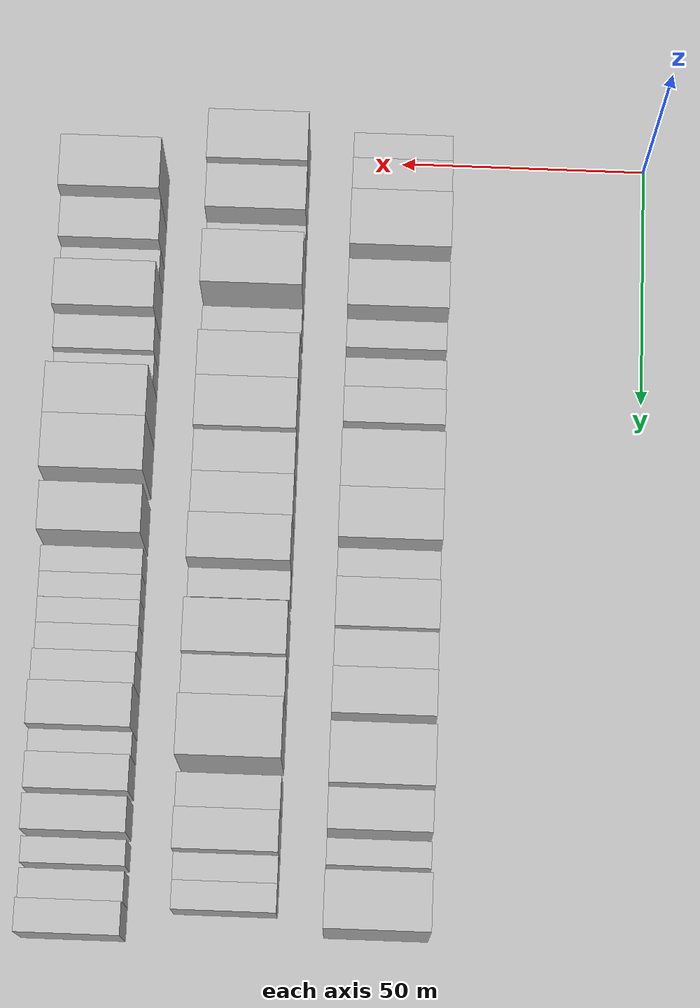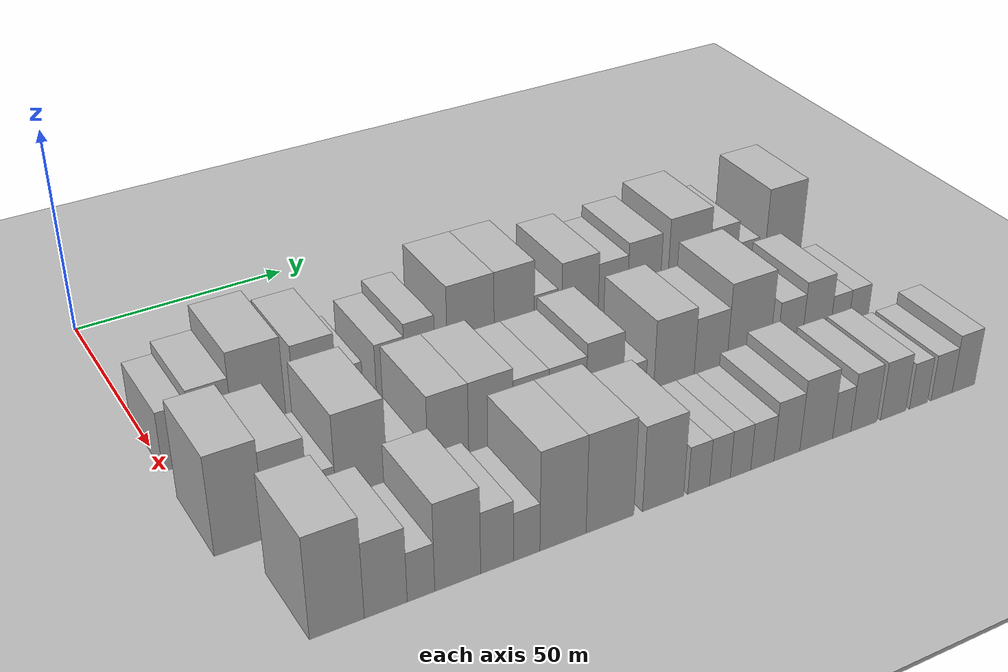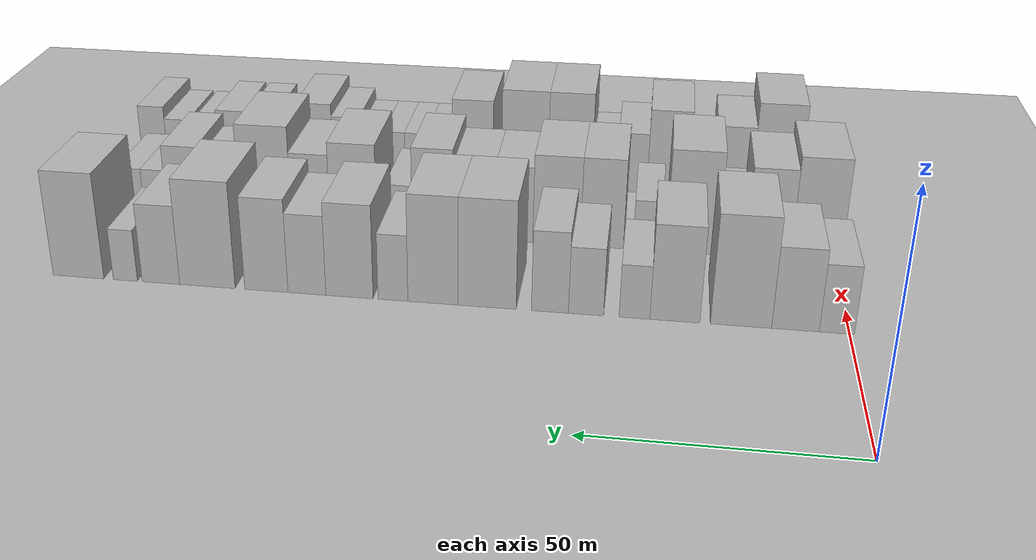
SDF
<sdf version="1.6">
 <world name="default">
  <include><name>ground_plane_1</name><uri>model://HANNAS_ground_plane</uri></include>
  <include>
   <name>ground_plane_2</name>
   <uri>model://HANNAS_ground_plane</uri>
   <pose>100 0 0  0 0 0</pose>
  </include>
  <model name="building_40">
   <static>1</static>
   <pose>50.0000 2.6433 0 0.000000 0.000000 0.000000</pose>
   <link name="link">
    <pose>0 0 7.50 0 0 0</pose>
    <collision name="collision"><geometry><box><size>20.0000 6.5380 15.0000</size></box></geometry></collision>
    <visual name="visual">
     <cast_shadows>0</cast_shadows>
     <geometry><box><size>20.0000 6.5380 15.0000</size></box></geometry>
     <material>
      <script>
       <uri>model://HANNAS_wall/materials/scripts</uri>
       <uri>model://HANNAS_wall/materials/textures</uri>
       <name>vrc/HANNAS_wall</name>
      </script>
     </material>
    </visual>
   </link>
  </model>
  <model name="building_41">
   <static>1</static>
   <pose>50.0000 10.3555 0 0.000000 0.000000 0.000000</pose>
   <link name="link">
    <pose>0 0 9.00 0 0 0</pose>
    <collision name="collision"><geometry><box><size>20.0000 8.8864 18.0000</size></box></geometry></collision>
    <visual name="visual">
     <cast_shadows>0</cast_shadows>
     <geometry><box><size>20.0000 8.8864 18.0000</size></box></geometry>
     <material>
      <script>
       <uri>model://HANNAS_wall/materials/scripts</uri>
       <uri>model://HANNAS_wall/materials/textures</uri>
       <name>vrc/HANNAS_wall</name>
      </script>
     </material>
    </visual>
   </link>
  </model>
  <model name="building_42">
   <static>1</static>
   <pose>50.0000 20.5644 0 0.000000 0.000000 0.000000</pose>
   <link name="link">
    <pose>0 0 12.00 0 0 0</pose>
    <collision name="collision"><geometry><box><size>20.0000 11.5315 24.0000</size></box></geometry></collision>
    <visual name="visual">
     <cast_shadows>0</cast_shadows>
     <geometry><box><size>20.0000 11.5315 24.0000</size></box></geometry>
     <material>
      <script>
       <uri>model://HANNAS_wall/materials/scripts</uri>
       <uri>model://HANNAS_wall/materials/textures</uri>
       <name>vrc/HANNAS_wall</name>
      </script>
     </material>
    </visual>
   </link>
  </model>
  <model name="building_43">
   <static>1</static>
   <pose>50.0000 33.1167 0 0.000000 0.000000 0.000000</pose>
   <link name="link">
    <pose>0 0 10.50 0 0 0</pose>
    <collision name="collision"><geometry><box><size>20.0000 9.5731 21.0000</size></box></geometry></collision>
    <visual name="visual">
     <cast_shadows>0</cast_shadows>
     <geometry><box><size>20.0000 9.5731 21.0000</size></box></geometry>
     <material>
      <script>
       <uri>model://HANNAS_wall/materials/scripts</uri>
       <uri>model://HANNAS_wall/materials/textures</uri>
       <name>vrc/HANNAS_wall</name>
      </script>
     </material>
    </visual>
   </link>
  </model>
  <model name="building_44">
   <static>1</static>
   <pose>50.0000 40.8518 0 0.000000 0.000000 0.000000</pose>
   <link name="link">
    <pose>0 0 6.00 0 0 0</pose>
    <collision name="collision"><geometry><box><size>20.0000 5.8971 12.0000</size></box></geometry></collision>
    <visual name="visual">
     <cast_shadows>0</cast_shadows>
     <geometry><box><size>20.0000 5.8971 12.0000</size></box></geometry>
     <material>
      <script>
       <uri>model://HANNAS_wall/materials/scripts</uri>
       <uri>model://HANNAS_wall/materials/textures</uri>
       <name>vrc/HANNAS_wall</name>
      </script>
     </material>
    </visual>
   </link>
  </model>
  <model name="building_45">
   <static>1</static>
   <pose>50.0000 50.2106 0 0.000000 0.000000 0.000000</pose>
   <link name="link">
    <pose>0 0 7.50 0 0 0</pose>
    <collision name="collision"><geometry><box><size>20.0000 6.8205 15.0000</size></box></geometry></collision>
    <visual name="visual">
     <cast_shadows>0</cast_shadows>
     <geometry><box><size>20.0000 6.8205 15.0000</size></box></geometry>
     <material>
      <script>
       <uri>model://HANNAS_wall/materials/scripts</uri>
       <uri>model://HANNAS_wall/materials/textures</uri>
       <name>vrc/HANNAS_wall</name>
      </script>
     </material>
    </visual>
   </link>
  </model>
  <model name="building_46">
   <static>1</static>
   <pose>50.0000 57.2424 0 0.000000 0.000000 0.000000</pose>
   <link name="link">
    <pose>0 0 9.00 0 0 0</pose>
    <collision name="collision"><geometry><box><size>20.0000 7.2431 18.0000</size></box></geometry></collision>
    <visual name="visual">
     <cast_shadows>0</cast_shadows>
     <geometry><box><size>20.0000 7.2431 18.0000</size></box></geometry>
     <material>
      <script>
       <uri>model://HANNAS_wall/materials/scripts</uri>
       <uri>model://HANNAS_wall/materials/textures</uri>
       <name>vrc/HANNAS_wall</name>
      </script>
     </material>
    </visual>
   </link>
  </model>
  <model name="building_47">
   <static>1</static>
   <pose>50.0000 69.6087 0 0.000000 0.000000 0.000000</pose>
   <link name="link">
    <pose>0 0 12.00 0 0 0</pose>
    <collision name="collision"><geometry><box><size>20.0000 11.4896 24.0000</size></box></geometry></collision>
    <visual name="visual">
     <cast_shadows>0</cast_shadows>
     <geometry><box><size>20.0000 11.4896 24.0000</size></box></geometry>
     <material>
      <script>
       <uri>model://HANNAS_wall/materials/scripts</uri>
       <uri>model://HANNAS_wall/materials/textures</uri>
       <name>vrc/HANNAS_wall</name>
      </script>
     </material>
    </visual>
   </link>
  </model>
  <model name="building_48">
   <static>1</static>
   <pose>50.0000 80.3825 0 0.000000 0.000000 0.000000</pose>
   <link name="link">
    <pose>0 0 12.00 0 0 0</pose>
    <collision name="collision"><geometry><box><size>20.0000 10.0580 24.0000</size></box></geometry></collision>
    <visual name="visual">
     <cast_shadows>0</cast_shadows>
     <geometry><box><size>20.0000 10.0580 24.0000</size></box></geometry>
     <material>
      <script>
       <uri>model://HANNAS_wall/materials/scripts</uri>
       <uri>model://HANNAS_wall/materials/textures</uri>
       <name>vrc/HANNAS_wall</name>
      </script>
     </material>
    </visual>
   </link>
  </model>
  <model name="building_49">
   <static>1</static>
   <pose>50.0000 88.4123 0 0.000000 0.000000 0.000000</pose>
   <link name="link">
    <pose>0 0 7.50 0 0 0</pose>
    <collision name="collision"><geometry><box><size>20.0000 6.0016 15.0000</size></box></geometry></collision>
    <visual name="visual">
     <cast_shadows>0</cast_shadows>
     <geometry><box><size>20.0000 6.0016 15.0000</size></box></geometry>
     <material>
      <script>
       <uri>model://HANNAS_wall/materials/scripts</uri>
       <uri>model://HANNAS_wall/materials/textures</uri>
       <name>vrc/HANNAS_wall</name>
      </script>
     </material>
    </visual>
   </link>
  </model>
  <model name="building_50">
   <static>1</static>
   <pose>50.0000 97.2108 0 0.000000 0.000000 0.000000</pose>
   <link name="link">
    <pose>0 0 10.50 0 0 0</pose>
    <collision name="collision"><geometry><box><size>20.0000 9.5954 21.0000</size></box></geometry></collision>
    <visual name="visual">
     <cast_shadows>0</cast_shadows>
     <geometry><box><size>20.0000 9.5954 21.0000</size></box></geometry>
     <material>
      <script>
       <uri>model://HANNAS_wall/materials/scripts</uri>
       <uri>model://HANNAS_wall/materials/textures</uri>
       <name>vrc/HANNAS_wall</name>
      </script>
     </material>
    </visual>
   </link>
  </model>
  <model name="building_51">
   <static>1</static>
   <pose>50.0000 105.8910 0 0.000000 0.000000 0.000000</pose>
   <link name="link">
    <pose>0 0 9.00 0 0 0</pose>
    <collision name="collision"><geometry><box><size>20.0000 7.7649 18.0000</size></box></geometry></collision>
    <visual name="visual">
     <cast_shadows>0</cast_shadows>
     <geometry><box><size>20.0000 7.7649 18.0000</size></box></geometry>
     <material>
      <script>
       <uri>model://HANNAS_wall/materials/scripts</uri>
       <uri>model://HANNAS_wall/materials/textures</uri>
       <name>vrc/HANNAS_wall</name>
      </script>
     </material>
    </visual>
   </link>
  </model>
  <model name="building_52">
   <static>1</static>
   <pose>50.0000 114.2471 0 0.000000 0.000000 0.000000</pose>
   <link name="link">
    <pose>0 0 10.50 0 0 0</pose>
    <collision name="collision"><geometry><box><size>20.0000 8.9474 21.0000</size></box></geometry></collision>
    <visual name="visual">
     <cast_shadows>0</cast_shadows>
     <geometry><box><size>20.0000 8.9474 21.0000</size></box></geometry>
     <material>
      <script>
       <uri>model://HANNAS_wall/materials/scripts</uri>
       <uri>model://HANNAS_wall/materials/textures</uri>
       <name>vrc/HANNAS_wall</name>
      </script>
     </material>
    </visual>
   </link>
  </model>
  <model name="building_53">
   <static>1</static>
   <pose>50.0000 126.5164 0 0.000000 0.000000 0.000000</pose>
   <link name="link">
    <pose>0 0 12.00 0 0 0</pose>
    <collision name="collision"><geometry><box><size>20.0000 11.5913 24.0000</size></box></geometry></collision>
    <visual name="visual">
     <cast_shadows>0</cast_shadows>
     <geometry><box><size>20.0000 11.5913 24.0000</size></box></geometry>
     <material>
      <script>
       <uri>model://HANNAS_wall/materials/scripts</uri>
       <uri>model://HANNAS_wall/materials/textures</uri>
       <name>vrc/HANNAS_wall</name>
      </script>
     </material>
    </visual>
   </link>
  </model>
  <model name="building_54">
   <static>1</static>
   <pose>50.0000 136.2720 0 0.000000 0.000000 0.000000</pose>
   <link name="link">
    <pose>0 0 9.00 0 0 0</pose>
    <collision name="collision"><geometry><box><size>20.0000 7.9199 18.0000</size></box></geometry></collision>
    <visual name="visual">
     <cast_shadows>0</cast_shadows>
     <geometry><box><size>20.0000 7.9199 18.0000</size></box></geometry>
     <material>
      <script>
       <uri>model://HANNAS_wall/materials/scripts</uri>
       <uri>model://HANNAS_wall/materials/textures</uri>
       <name>vrc/HANNAS_wall</name>
      </script>
     </material>
    </visual>
   </link>
  </model>
  <model name="building_55">
   <static>1</static>
   <pose>50.0000 143.8051 0 0.000000 0.000000 0.000000</pose>
   <link name="link">
    <pose>0 0 6.00 0 0 0</pose>
    <collision name="collision"><geometry><box><size>20.0000 5.1463 12.0000</size></box></geometry></collision>
    <visual name="visual">
     <cast_shadows>0</cast_shadows>
     <geometry><box><size>20.0000 5.1463 12.0000</size></box></geometry>
     <material>
      <script>
       <uri>model://HANNAS_wall/materials/scripts</uri>
       <uri>model://HANNAS_wall/materials/textures</uri>
       <name>vrc/HANNAS_wall</name>
      </script>
     </material>
    </visual>
   </link>
  </model>
  <model name="building_56">
   <static>1</static>
   <pose>50.0000 153.8165 0 0.000000 0.000000 0.000000</pose>
   <link name="link">
    <pose>0 0 12.00 0 0 0</pose>
    <collision name="collision"><geometry><box><size>20.0000 10.8766 24.0000</size></box></geometry></collision>
    <visual name="visual">
     <cast_shadows>0</cast_shadows>
     <geometry><box><size>20.0000 10.8766 24.0000</size></box></geometry>
     <material>
      <script>
       <uri>model://HANNAS_wall/materials/scripts</uri>
       <uri>model://HANNAS_wall/materials/textures</uri>
       <name>vrc/HANNAS_wall</name>
      </script>
     </material>
    </visual>
   </link>
  </model>
  <model name="building_113">
   <static>1</static>
   <pose>79.0000 4.1818 0 0.000000 0.000000 0.000000</pose>
   <link name="link">
    <pose>0 0 12.00 0 0 0</pose>
    <collision name="collision"><geometry><box><size>20.0000 10.3268 24.0000</size></box></geometry></collision>
    <visual name="visual">
     <cast_shadows>0</cast_shadows>
     <geometry><box><size>20.0000 10.3268 24.0000</size></box></geometry>
     <material>
      <script>
       <uri>model://HANNAS_wall/materials/scripts</uri>
       <uri>model://HANNAS_wall/materials/textures</uri>
       <name>vrc/HANNAS_wall</name>
      </script>
     </material>
    </visual>
   </link>
  </model>
  <model name="building_114">
   <static>1</static>
   <pose>79.0000 13.9380 0 0.000000 0.000000 0.000000</pose>
   <link name="link">
    <pose>0 0 10.50 0 0 0</pose>
    <collision name="collision"><geometry><box><size>20.0000 9.1856 21.0000</size></box></geometry></collision>
    <visual name="visual">
     <cast_shadows>0</cast_shadows>
     <geometry><box><size>20.0000 9.1856 21.0000</size></box></geometry>
     <material>
      <script>
       <uri>model://HANNAS_wall/materials/scripts</uri>
       <uri>model://HANNAS_wall/materials/textures</uri>
       <name>vrc/HANNAS_wall</name>
      </script>
     </material>
    </visual>
   </link>
  </model>
  <model name="building_115">
   <static>1</static>
   <pose>79.0000 21.4108 0 0.000000 0.000000 0.000000</pose>
   <link name="link">
    <pose>0 0 6.00 0 0 0</pose>
    <collision name="collision"><geometry><box><size>20.0000 5.7599 12.0000</size></box></geometry></collision>
    <visual name="visual">
     <cast_shadows>0</cast_shadows>
     <geometry><box><size>20.0000 5.7599 12.0000</size></box></geometry>
     <material>
      <script>
       <uri>model://HANNAS_wall/materials/scripts</uri>
       <uri>model://HANNAS_wall/materials/textures</uri>
       <name>vrc/HANNAS_wall</name>
      </script>
     </material>
    </visual>
   </link>
  </model>
  <model name="building_116">
   <static>1</static>
   <pose>79.0000 29.7503 0 0.000000 0.000000 0.000000</pose>
   <link name="link">
    <pose>0 0 12.00 0 0 0</pose>
    <collision name="collision"><geometry><box><size>20.0000 10.9190 24.0000</size></box></geometry></collision>
    <visual name="visual">
     <cast_shadows>0</cast_shadows>
     <geometry><box><size>20.0000 10.9190 24.0000</size></box></geometry>
     <material>
      <script>
       <uri>model://HANNAS_wall/materials/scripts</uri>
       <uri>model://HANNAS_wall/materials/textures</uri>
       <name>vrc/HANNAS_wall</name>
      </script>
     </material>
    </visual>
   </link>
  </model>
  <model name="building_117">
   <static>1</static>
   <pose>79.0000 39.1713 0 0.000000 0.000000 0.000000</pose>
   <link name="link">
    <pose>0 0 6.00 0 0 0</pose>
    <collision name="collision"><geometry><box><size>20.0000 5.9230 12.0000</size></box></geometry></collision>
    <visual name="visual">
     <cast_shadows>0</cast_shadows>
     <geometry><box><size>20.0000 5.9230 12.0000</size></box></geometry>
     <material>
      <script>
       <uri>model://HANNAS_wall/materials/scripts</uri>
       <uri>model://HANNAS_wall/materials/textures</uri>
       <name>vrc/HANNAS_wall</name>
      </script>
     </material>
    </visual>
   </link>
  </model>
  <model name="building_118">
   <static>1</static>
   <pose>79.0000 48.6956 0 0.000000 0.000000 0.000000</pose>
   <link name="link">
    <pose>0 0 10.50 0 0 0</pose>
    <collision name="collision"><geometry><box><size>20.0000 9.1257 21.0000</size></box></geometry></collision>
    <visual name="visual">
     <cast_shadows>0</cast_shadows>
     <geometry><box><size>20.0000 9.1257 21.0000</size></box></geometry>
     <material>
      <script>
       <uri>model://HANNAS_wall/materials/scripts</uri>
       <uri>model://HANNAS_wall/materials/textures</uri>
       <name>vrc/HANNAS_wall</name>
      </script>
     </material>
    </visual>
   </link>
  </model>
  <model name="building_119">
   <static>1</static>
   <pose>79.0000 58.3672 0 0.000000 0.000000 0.000000</pose>
   <link name="link">
    <pose>0 0 10.50 0 0 0</pose>
    <collision name="collision"><geometry><box><size>20.0000 10.2175 21.0000</size></box></geometry></collision>
    <visual name="visual">
     <cast_shadows>0</cast_shadows>
     <geometry><box><size>20.0000 10.2175 21.0000</size></box></geometry>
     <material>
      <script>
       <uri>model://HANNAS_wall/materials/scripts</uri>
       <uri>model://HANNAS_wall/materials/textures</uri>
       <name>vrc/HANNAS_wall</name>
      </script>
     </material>
    </visual>
   </link>
  </model>
  <model name="building_120">
   <static>1</static>
   <pose>79.0000 67.6399 0 0.000000 0.000000 0.000000</pose>
   <link name="link">
    <pose>0 0 9.00 0 0 0</pose>
    <collision name="collision"><geometry><box><size>20.0000 8.3278 18.0000</size></box></geometry></collision>
    <visual name="visual">
     <cast_shadows>0</cast_shadows>
     <geometry><box><size>20.0000 8.3278 18.0000</size></box></geometry>
     <material>
      <script>
       <uri>model://HANNAS_wall/materials/scripts</uri>
       <uri>model://HANNAS_wall/materials/textures</uri>
       <name>vrc/HANNAS_wall</name>
      </script>
     </material>
    </visual>
   </link>
  </model>
  <model name="building_121">
   <static>1</static>
   <pose>79.0000 76.2771 0 0.000000 0.000000 0.000000</pose>
   <link name="link">
    <pose>0 0 9.00 0 0 0</pose>
    <collision name="collision"><geometry><box><size>20.0000 8.9467 18.0000</size></box></geometry></collision>
    <visual name="visual">
     <cast_shadows>0</cast_shadows>
     <geometry><box><size>20.0000 8.9467 18.0000</size></box></geometry>
     <material>
      <script>
       <uri>model://HANNAS_wall/materials/scripts</uri>
       <uri>model://HANNAS_wall/materials/textures</uri>
       <name>vrc/HANNAS_wall</name>
      </script>
     </material>
    </visual>
   </link>
  </model>
  <model name="building_122">
   <static>1</static>
   <pose>79.0000 85.2606 0 0.000000 0.000000 0.000000</pose>
   <link name="link">
    <pose>0 0 10.50 0 0 0</pose>
    <collision name="collision"><geometry><box><size>20.0000 9.0201 21.0000</size></box></geometry></collision>
    <visual name="visual">
     <cast_shadows>0</cast_shadows>
     <geometry><box><size>20.0000 9.0201 21.0000</size></box></geometry>
     <material>
      <script>
       <uri>model://HANNAS_wall/materials/scripts</uri>
       <uri>model://HANNAS_wall/materials/textures</uri>
       <name>vrc/HANNAS_wall</name>
      </script>
     </material>
    </visual>
   </link>
  </model>
  <model name="building_123">
   <static>1</static>
   <pose>79.0000 92.6813 0 0.000000 0.000000 0.000000</pose>
   <link name="link">
    <pose>0 0 6.00 0 0 0</pose>
    <collision name="collision"><geometry><box><size>20.0000 5.8213 12.0000</size></box></geometry></collision>
    <visual name="visual">
     <cast_shadows>0</cast_shadows>
     <geometry><box><size>20.0000 5.8213 12.0000</size></box></geometry>
     <material>
      <script>
       <uri>model://HANNAS_wall/materials/scripts</uri>
       <uri>model://HANNAS_wall/materials/textures</uri>
       <name>vrc/HANNAS_wall</name>
      </script>
     </material>
    </visual>
   </link>
  </model>
  <model name="building_124">
   <static>1</static>
   <pose>79.0000 102.7806 0 0.000000 0.000000 0.000000</pose>
   <link name="link">
    <pose>0 0 10.50 0 0 0</pose>
    <collision name="collision"><geometry><box><size>20.0000 10.3773 21.0000</size></box></geometry></collision>
    <visual name="visual">
     <cast_shadows>0</cast_shadows>
     <geometry><box><size>20.0000 10.3773 21.0000</size></box></geometry>
     <material>
      <script>
       <uri>model://HANNAS_wall/materials/scripts</uri>
       <uri>model://HANNAS_wall/materials/textures</uri>
       <name>vrc/HANNAS_wall</name>
      </script>
     </material>
    </visual>
   </link>
  </model>
  <model name="building_125">
   <static>1</static>
   <pose>79.0000 112.2680 0 0.000000 0.000000 0.000000</pose>
   <link name="link">
    <pose>0 0 9.00 0 0 0</pose>
    <collision name="collision"><geometry><box><size>20.0000 8.5975 18.0000</size></box></geometry></collision>
    <visual name="visual">
     <cast_shadows>0</cast_shadows>
     <geometry><box><size>20.0000 8.5975 18.0000</size></box></geometry>
     <material>
      <script>
       <uri>model://HANNAS_wall/materials/scripts</uri>
       <uri>model://HANNAS_wall/materials/textures</uri>
       <name>vrc/HANNAS_wall</name>
      </script>
     </material>
    </visual>
   </link>
  </model>
  <model name="building_126">
   <static>1</static>
   <pose>79.0000 122.3824 0 0.000000 0.000000 0.000000</pose>
   <link name="link">
    <pose>0 0 12.00 0 0 0</pose>
    <collision name="collision"><geometry><box><size>20.0000 11.6312 24.0000</size></box></geometry></collision>
    <visual name="visual">
     <cast_shadows>0</cast_shadows>
     <geometry><box><size>20.0000 11.6312 24.0000</size></box></geometry>
     <material>
      <script>
       <uri>model://HANNAS_wall/materials/scripts</uri>
       <uri>model://HANNAS_wall/materials/textures</uri>
       <name>vrc/HANNAS_wall</name>
      </script>
     </material>
    </visual>
   </link>
  </model>
  <model name="building_127">
   <static>1</static>
   <pose>79.0000 133.6462 0 0.000000 0.000000 0.000000</pose>
   <link name="link">
    <pose>0 0 7.50 0 0 0</pose>
    <collision name="collision"><geometry><box><size>20.0000 6.8965 15.0000</size></box></geometry></collision>
    <visual name="visual">
     <cast_shadows>0</cast_shadows>
     <geometry><box><size>20.0000 6.8965 15.0000</size></box></geometry>
     <material>
      <script>
       <uri>model://HANNAS_wall/materials/scripts</uri>
       <uri>model://HANNAS_wall/materials/textures</uri>
       <name>vrc/HANNAS_wall</name>
      </script>
     </material>
    </visual>
   </link>
  </model>
  <model name="building_128">
   <static>1</static>
   <pose>79.0000 141.0419 0 0.000000 0.000000 0.000000</pose>
   <link name="link">
    <pose>0 0 9.00 0 0 0</pose>
    <collision name="collision"><geometry><box><size>20.0000 7.8948 18.0000</size></box></geometry></collision>
    <visual name="visual">
     <cast_shadows>0</cast_shadows>
     <geometry><box><size>20.0000 7.8948 18.0000</size></box></geometry>
     <material>
      <script>
       <uri>model://HANNAS_wall/materials/scripts</uri>
       <uri>model://HANNAS_wall/materials/textures</uri>
       <name>vrc/HANNAS_wall</name>
      </script>
     </material>
    </visual>
   </link>
  </model>
  <model name="building_129">
   <static>1</static>
   <pose>79.0000 147.6118 0 0.000000 0.000000 0.000000</pose>
   <link name="link">
    <pose>0 0 6.00 0 0 0</pose>
    <collision name="collision"><geometry><box><size>20.0000 5.2451 12.0000</size></box></geometry></collision>
    <visual name="visual">
     <cast_shadows>0</cast_shadows>
     <geometry><box><size>20.0000 5.2451 12.0000</size></box></geometry>
     <material>
      <script>
       <uri>model://HANNAS_wall/materials/scripts</uri>
       <uri>model://HANNAS_wall/materials/textures</uri>
       <name>vrc/HANNAS_wall</name>
      </script>
     </material>
    </visual>
   </link>
  </model>
  <model name="building_130">
   <static>1</static>
   <pose>79.0000 153.0035 0 0.000000 0.000000 0.000000</pose>
   <link name="link">
    <pose>0 0 6.00 0 0 0</pose>
    <collision name="collision"><geometry><box><size>20.0000 5.5384 12.0000</size></box></geometry></collision>
    <visual name="visual">
     <cast_shadows>0</cast_shadows>
     <geometry><box><size>20.0000 5.5384 12.0000</size></box></geometry>
     <material>
      <script>
       <uri>model://HANNAS_wall/materials/scripts</uri>
       <uri>model://HANNAS_wall/materials/textures</uri>
       <name>vrc/HANNAS_wall</name>
      </script>
     </material>
    </visual>
   </link>
  </model>
  <model name="building_188">
   <static>1</static>
   <pose>108.0000 10.8776 0 0.000000 0.000000 0.000000</pose>
   <link name="link">
    <pose>0 0 12.00 0 0 0</pose>
    <collision name="collision"><geometry><box><size>20.0000 10.7017 24.0000</size></box></geometry></collision>
    <visual name="visual">
     <cast_shadows>0</cast_shadows>
     <geometry><box><size>20.0000 10.7017 24.0000</size></box></geometry>
     <material>
      <script>
       <uri>model://HANNAS_wall/materials/scripts</uri>
       <uri>model://HANNAS_wall/materials/textures</uri>
       <name>vrc/HANNAS_wall</name>
      </script>
     </material>
    </visual>
   </link>
  </model>
  <model name="building_189">
   <static>1</static>
   <pose>108.0000 20.5177 0 0.000000 0.000000 0.000000</pose>
   <link name="link">
    <pose>0 0 9.00 0 0 0</pose>
    <collision name="collision"><geometry><box><size>20.0000 8.5784 18.0000</size></box></geometry></collision>
    <visual name="visual">
     <cast_shadows>0</cast_shadows>
     <geometry><box><size>20.0000 8.5784 18.0000</size></box></geometry>
     <material>
      <script>
       <uri>model://HANNAS_wall/materials/scripts</uri>
       <uri>model://HANNAS_wall/materials/textures</uri>
       <name>vrc/HANNAS_wall</name>
      </script>
     </material>
    </visual>
   </link>
  </model>
  <model name="building_190">
   <static>1</static>
   <pose>108.0000 27.6079 0 0.000000 0.000000 0.000000</pose>
   <link name="link">
    <pose>0 0 6.00 0 0 0</pose>
    <collision name="collision"><geometry><box><size>20.0000 5.6020 12.0000</size></box></geometry></collision>
    <visual name="visual">
     <cast_shadows>0</cast_shadows>
     <geometry><box><size>20.0000 5.6020 12.0000</size></box></geometry>
     <material>
      <script>
       <uri>model://HANNAS_wall/materials/scripts</uri>
       <uri>model://HANNAS_wall/materials/textures</uri>
       <name>vrc/HANNAS_wall</name>
      </script>
     </material>
    </visual>
   </link>
  </model>
  <model name="building_191">
   <static>1</static>
   <pose>108.0000 35.1786 0 0.000000 0.000000 0.000000</pose>
   <link name="link">
    <pose>0 0 10.50 0 0 0</pose>
    <collision name="collision"><geometry><box><size>20.0000 9.5395 21.0000</size></box></geometry></collision>
    <visual name="visual">
     <cast_shadows>0</cast_shadows>
     <geometry><box><size>20.0000 9.5395 21.0000</size></box></geometry>
     <material>
      <script>
       <uri>model://HANNAS_wall/materials/scripts</uri>
       <uri>model://HANNAS_wall/materials/textures</uri>
       <name>vrc/HANNAS_wall</name>
      </script>
     </material>
    </visual>
   </link>
  </model>
  <model name="building_192">
   <static>1</static>
   <pose>108.0000 43.4532 0 0.000000 0.000000 0.000000</pose>
   <link name="link">
    <pose>0 0 7.50 0 0 0</pose>
    <collision name="collision"><geometry><box><size>20.0000 7.0097 15.0000</size></box></geometry></collision>
    <visual name="visual">
     <cast_shadows>0</cast_shadows>
     <geometry><box><size>20.0000 7.0097 15.0000</size></box></geometry>
     <material>
      <script>
       <uri>model://HANNAS_wall/materials/scripts</uri>
       <uri>model://HANNAS_wall/materials/textures</uri>
       <name>vrc/HANNAS_wall</name>
      </script>
     </material>
    </visual>
   </link>
  </model>
  <model name="building_193">
   <static>1</static>
   <pose>108.0000 49.8069 0 0.000000 0.000000 0.000000</pose>
   <link name="link">
    <pose>0 0 6.00 0 0 0</pose>
    <collision name="collision"><geometry><box><size>20.0000 5.6976 12.0000</size></box></geometry></collision>
    <visual name="visual">
     <cast_shadows>0</cast_shadows>
     <geometry><box><size>20.0000 5.6976 12.0000</size></box></geometry>
     <material>
      <script>
       <uri>model://HANNAS_wall/materials/scripts</uri>
       <uri>model://HANNAS_wall/materials/textures</uri>
       <name>vrc/HANNAS_wall</name>
      </script>
     </material>
    </visual>
   </link>
  </model>
  <model name="building_194">
   <static>1</static>
   <pose>108.0000 57.7580 0 0.000000 0.000000 0.000000</pose>
   <link name="link">
    <pose>0 0 12.00 0 0 0</pose>
    <collision name="collision"><geometry><box><size>20.0000 10.2046 24.0000</size></box></geometry></collision>
    <visual name="visual">
     <cast_shadows>0</cast_shadows>
     <geometry><box><size>20.0000 10.2046 24.0000</size></box></geometry>
     <material>
      <script>
       <uri>model://HANNAS_wall/materials/scripts</uri>
       <uri>model://HANNAS_wall/materials/textures</uri>
       <name>vrc/HANNAS_wall</name>
      </script>
     </material>
    </visual>
   </link>
  </model>
  <model name="building_195">
   <static>1</static>
   <pose>108.0000 68.2894 0 0.000000 0.000000 0.000000</pose>
   <link name="link">
    <pose>0 0 12.00 0 0 0</pose>
    <collision name="collision"><geometry><box><size>20.0000 10.8582 24.0000</size></box></geometry></collision>
    <visual name="visual">
     <cast_shadows>0</cast_shadows>
     <geometry><box><size>20.0000 10.8582 24.0000</size></box></geometry>
     <material>
      <script>
       <uri>model://HANNAS_wall/materials/scripts</uri>
       <uri>model://HANNAS_wall/materials/textures</uri>
       <name>vrc/HANNAS_wall</name>
      </script>
     </material>
    </visual>
   </link>
  </model>
  <model name="building_196">
   <static>1</static>
   <pose>108.0000 80.5509 0 0.000000 0.000000 0.000000</pose>
   <link name="link">
    <pose>0 0 10.50 0 0 0</pose>
    <collision name="collision"><geometry><box><size>20.0000 9.6648 21.0000</size></box></geometry></collision>
    <visual name="visual">
     <cast_shadows>0</cast_shadows>
     <geometry><box><size>20.0000 9.6648 21.0000</size></box></geometry>
     <material>
      <script>
       <uri>model://HANNAS_wall/materials/scripts</uri>
       <uri>model://HANNAS_wall/materials/textures</uri>
       <name>vrc/HANNAS_wall</name>
      </script>
     </material>
    </visual>
   </link>
  </model>
  <model name="building_197">
   <static>1</static>
   <pose>108.0000 88.9772 0 0.000000 0.000000 0.000000</pose>
   <link name="link">
    <pose>0 0 6.00 0 0 0</pose>
    <collision name="collision"><geometry><box><size>20.0000 5.1878 12.0000</size></box></geometry></collision>
    <visual name="visual">
     <cast_shadows>0</cast_shadows>
     <geometry><box><size>20.0000 5.1878 12.0000</size></box></geometry>
     <material>
      <script>
       <uri>model://HANNAS_wall/materials/scripts</uri>
       <uri>model://HANNAS_wall/materials/textures</uri>
       <name>vrc/HANNAS_wall</name>
      </script>
     </material>
    </visual>
   </link>
  </model>
  <model name="building_198">
   <static>1</static>
   <pose>108.0000 94.0999 0 0.000000 0.000000 0.000000</pose>
   <link name="link">
    <pose>0 0 6.00 0 0 0</pose>
    <collision name="collision"><geometry><box><size>20.0000 5.0576 12.0000</size></box></geometry></collision>
    <visual name="visual">
     <cast_shadows>0</cast_shadows>
     <geometry><box><size>20.0000 5.0576 12.0000</size></box></geometry>
     <material>
      <script>
       <uri>model://HANNAS_wall/materials/scripts</uri>
       <uri>model://HANNAS_wall/materials/textures</uri>
       <name>vrc/HANNAS_wall</name>
      </script>
     </material>
    </visual>
   </link>
  </model>
  <model name="building_199">
   <static>1</static>
   <pose>108.0000 99.1469 0 0.000000 0.000000 0.000000</pose>
   <link name="link">
    <pose>0 0 6.00 0 0 0</pose>
    <collision name="collision"><geometry><box><size>20.0000 5.0362 12.0000</size></box></geometry></collision>
    <visual name="visual">
     <cast_shadows>0</cast_shadows>
     <geometry><box><size>20.0000 5.0362 12.0000</size></box></geometry>
     <material>
      <script>
       <uri>model://HANNAS_wall/materials/scripts</uri>
       <uri>model://HANNAS_wall/materials/textures</uri>
       <name>vrc/HANNAS_wall</name>
      </script>
     </material>
    </visual>
   </link>
  </model>
  <model name="building_200">
   <static>1</static>
   <pose>108.0000 104.5587 0 0.000000 0.000000 0.000000</pose>
   <link name="link">
    <pose>0 0 6.00 0 0 0</pose>
    <collision name="collision"><geometry><box><size>20.0000 5.7875 12.0000</size></box></geometry></collision>
    <visual name="visual">
     <cast_shadows>0</cast_shadows>
     <geometry><box><size>20.0000 5.7875 12.0000</size></box></geometry>
     <material>
      <script>
       <uri>model://HANNAS_wall/materials/scripts</uri>
       <uri>model://HANNAS_wall/materials/textures</uri>
       <name>vrc/HANNAS_wall</name>
      </script>
     </material>
    </visual>
   </link>
  </model>
  <model name="building_201">
   <static>1</static>
   <pose>108.0000 110.7337 0 0.000000 0.000000 0.000000</pose>
   <link name="link">
    <pose>0 0 7.50 0 0 0</pose>
    <collision name="collision"><geometry><box><size>20.0000 6.5625 15.0000</size></box></geometry></collision>
    <visual name="visual">
     <cast_shadows>0</cast_shadows>
     <geometry><box><size>20.0000 6.5625 15.0000</size></box></geometry>
     <material>
      <script>
       <uri>model://HANNAS_wall/materials/scripts</uri>
       <uri>model://HANNAS_wall/materials/textures</uri>
       <name>vrc/HANNAS_wall</name>
      </script>
     </material>
    </visual>
   </link>
  </model>
  <model name="building_202">
   <static>1</static>
   <pose>108.0000 118.2433 0 0.000000 0.000000 0.000000</pose>
   <link name="link">
    <pose>0 0 9.00 0 0 0</pose>
    <collision name="collision"><geometry><box><size>20.0000 8.4567 18.0000</size></box></geometry></collision>
    <visual name="visual">
     <cast_shadows>0</cast_shadows>
     <geometry><box><size>20.0000 8.4567 18.0000</size></box></geometry>
     <material>
      <script>
       <uri>model://HANNAS_wall/materials/scripts</uri>
       <uri>model://HANNAS_wall/materials/textures</uri>
       <name>vrc/HANNAS_wall</name>
      </script>
     </material>
    </visual>
   </link>
  </model>
  <model name="building_203">
   <static>1</static>
   <pose>108.0000 124.8720 0 0.000000 0.000000 0.000000</pose>
   <link name="link">
    <pose>0 0 6.00 0 0 0</pose>
    <collision name="collision"><geometry><box><size>20.0000 4.8008 12.0000</size></box></geometry></collision>
    <visual name="visual">
     <cast_shadows>0</cast_shadows>
     <geometry><box><size>20.0000 4.8008 12.0000</size></box></geometry>
     <material>
      <script>
       <uri>model://HANNAS_wall/materials/scripts</uri>
       <uri>model://HANNAS_wall/materials/textures</uri>
       <name>vrc/HANNAS_wall</name>
      </script>
     </material>
    </visual>
   </link>
  </model>
  <model name="building_204">
   <static>1</static>
   <pose>108.0000 130.7528 0 0.000000 0.000000 0.000000</pose>
   <link name="link">
    <pose>0 0 7.50 0 0 0</pose>
    <collision name="collision"><geometry><box><size>20.0000 6.9608 15.0000</size></box></geometry></collision>
    <visual name="visual">
     <cast_shadows>0</cast_shadows>
     <geometry><box><size>20.0000 6.9608 15.0000</size></box></geometry>
     <material>
      <script>
       <uri>model://HANNAS_wall/materials/scripts</uri>
       <uri>model://HANNAS_wall/materials/textures</uri>
       <name>vrc/HANNAS_wall</name>
      </script>
     </material>
    </visual>
   </link>
  </model>
  <model name="building_205">
   <static>1</static>
   <pose>108.0000 138.6523 0 0.000000 0.000000 0.000000</pose>
   <link name="link">
    <pose>0 0 7.50 0 0 0</pose>
    <collision name="collision"><geometry><box><size>20.0000 6.8383 15.0000</size></box></geometry></collision>
    <visual name="visual">
     <cast_shadows>0</cast_shadows>
     <geometry><box><size>20.0000 6.8383 15.0000</size></box></geometry>
     <material>
      <script>
       <uri>model://HANNAS_wall/materials/scripts</uri>
       <uri>model://HANNAS_wall/materials/textures</uri>
       <name>vrc/HANNAS_wall</name>
      </script>
     </material>
    </visual>
   </link>
  </model>
  <model name="building_206">
   <static>1</static>
   <pose>108.0000 145.5595 0 0.000000 0.000000 0.000000</pose>
   <link name="link">
    <pose>0 0 6.00 0 0 0</pose>
    <collision name="collision"><geometry><box><size>20.0000 4.9761 12.0000</size></box></geometry></collision>
    <visual name="visual">
     <cast_shadows>0</cast_shadows>
     <geometry><box><size>20.0000 4.9761 12.0000</size></box></geometry>
     <material>
      <script>
       <uri>model://HANNAS_wall/materials/scripts</uri>
       <uri>model://HANNAS_wall/materials/textures</uri>
       <name>vrc/HANNAS_wall</name>
      </script>
     </material>
    </visual>
   </link>
  </model>
  <model name="building_207">
   <static>1</static>
   <pose>108.0000 151.9991 0 0.000000 0.000000 0.000000</pose>
   <link name="link">
    <pose>0 0 6.00 0 0 0</pose>
    <collision name="collision"><geometry><box><size>20.0000 5.9031 12.0000</size></box></geometry></collision>
    <visual name="visual">
     <cast_shadows>0</cast_shadows>
     <geometry><box><size>20.0000 5.9031 12.0000</size></box></geometry>
     <material>
      <script>
       <uri>model://HANNAS_wall/materials/scripts</uri>
       <uri>model://HANNAS_wall/materials/textures</uri>
       <name>vrc/HANNAS_wall</name>
      </script>
     </material>
    </visual>
   </link>
  </model>
  <model name="building_208">
   <static>1</static>
   <pose>108.0000 158.1301 0 0.000000 0.000000 0.000000</pose>
   <link name="link">
    <pose>0 0 7.50 0 0 0</pose>
    <collision name="collision"><geometry><box><size>20.0000 6.3589 15.0000</size></box></geometry></collision>
    <visual name="visual">
     <cast_shadows>0</cast_shadows>
     <geometry><box><size>20.0000 6.3589 15.0000</size></box></geometry>
     <material>
      <script>
       <uri>model://HANNAS_wall/materials/scripts</uri>
       <uri>model://HANNAS_wall/materials/textures</uri>
       <name>vrc/HANNAS_wall</name>
      </script>
     </material>
    </visual>
   </link>
  </model>
 </world>
</sdf>
